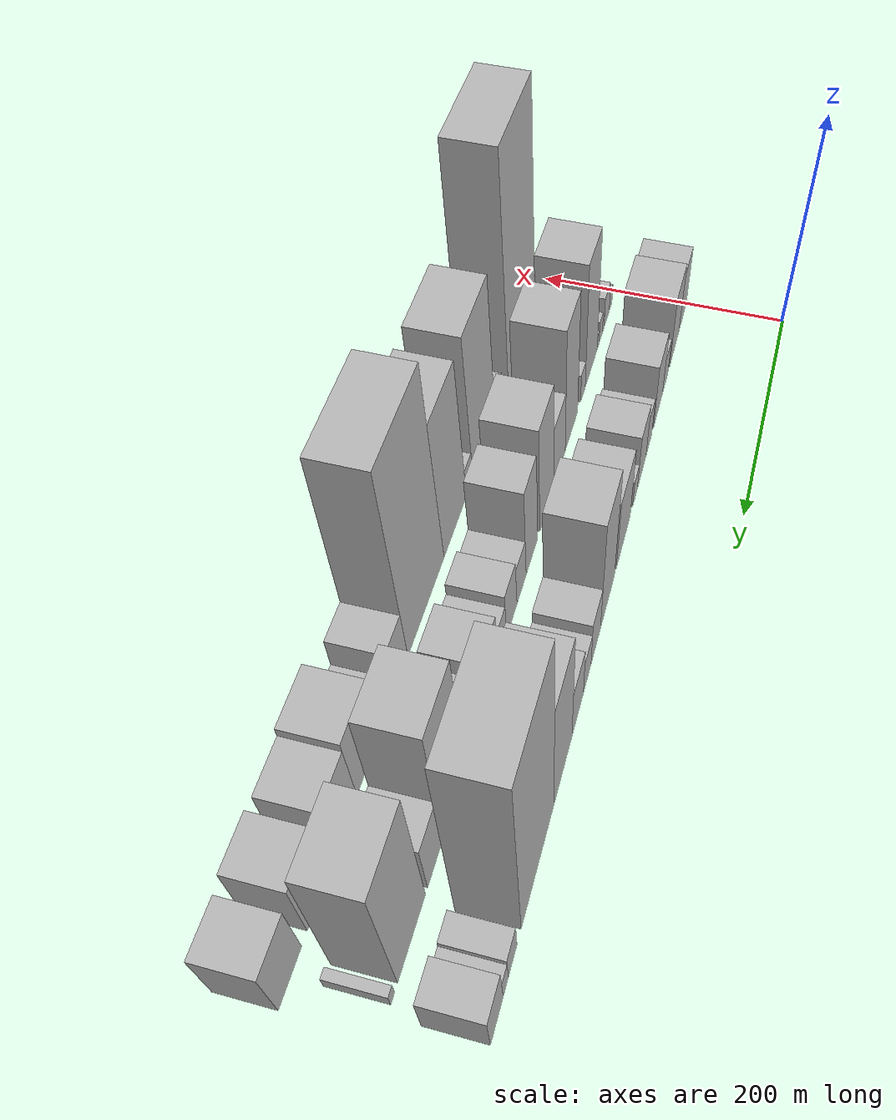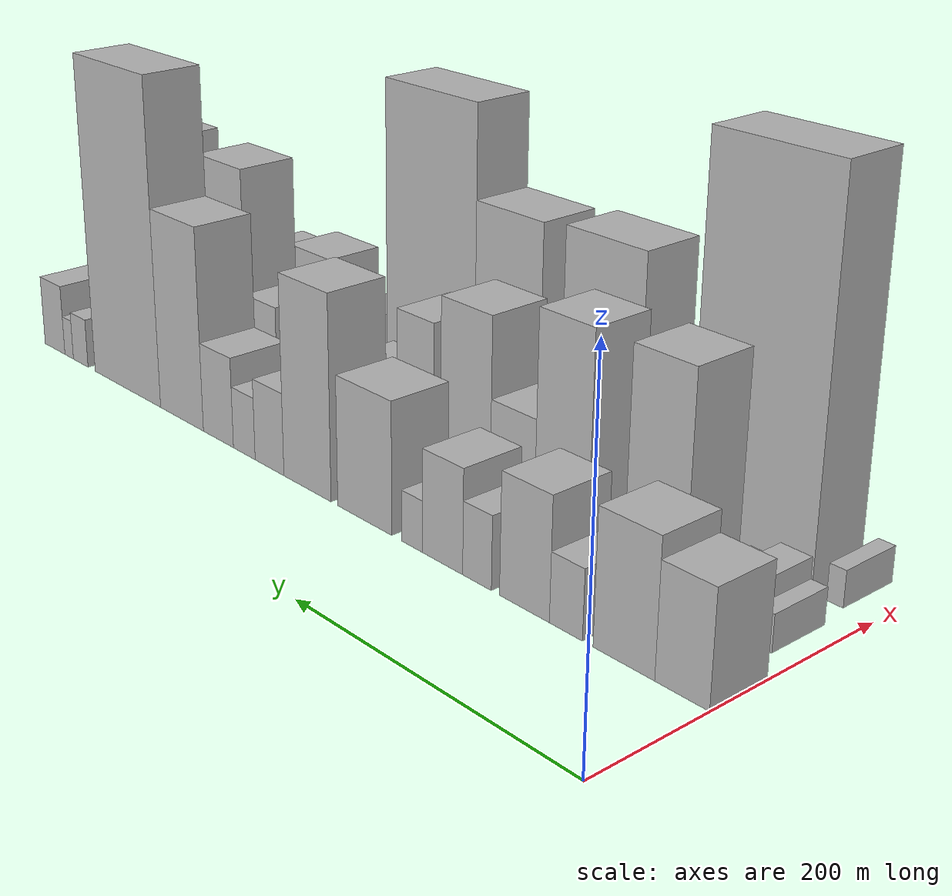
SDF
<sdf version="1.6">
 <world name="default">
  <model name="building_19">
   <static>1</static>
   <pose>100.0000 16.6718 0 0.000000 0.000000 0.000000</pose>
   <link name="link">
    <pose>0 0 31.50 0 0 0</pose>
    <collision name="collision"><geometry><box><size>40.0000 32.9597 63.0000</size></box></geometry></collision>
    <visual name="visual">
     <cast_shadows>0</cast_shadows>
     <geometry><box><size>40.0000 32.9597 63.0000</size></box></geometry>
     <material>
      <script>
       <uri>model://HANNAS_wall/materials/scripts</uri>
       <uri>model://HANNAS_wall/materials/textures</uri>
       <name>vrc/HANNAS_wall</name>
      </script>
     </material>
    </visual>
   </link>
  </model>
  <model name="building_20">
   <static>1</static>
   <pose>100.0000 52.8334 0 0.000000 0.000000 0.000000</pose>
   <link name="link">
    <pose>0 0 37.50 0 0 0</pose>
    <collision name="collision"><geometry><box><size>40.0000 39.3635 75.0000</size></box></geometry></collision>
    <visual name="visual">
     <cast_shadows>0</cast_shadows>
     <geometry><box><size>40.0000 39.3635 75.0000</size></box></geometry>
     <material>
      <script>
       <uri>model://HANNAS_wall/materials/scripts</uri>
       <uri>model://HANNAS_wall/materials/textures</uri>
       <name>vrc/HANNAS_wall</name>
      </script>
     </material>
    </visual>
   </link>
  </model>
  <model name="building_21">
   <static>1</static>
   <pose>100.0000 90.7541 0 0.000000 0.000000 0.000000</pose>
   <link name="link">
    <pose>0 0 19.50 0 0 0</pose>
    <collision name="collision"><geometry><box><size>40.0000 22.4779 39.0000</size></box></geometry></collision>
    <visual name="visual">
     <cast_shadows>0</cast_shadows>
     <geometry><box><size>40.0000 22.4779 39.0000</size></box></geometry>
     <material>
      <script>
       <uri>model://HANNAS_wall/materials/scripts</uri>
       <uri>model://HANNAS_wall/materials/textures</uri>
       <name>vrc/HANNAS_wall</name>
      </script>
     </material>
    </visual>
   </link>
  </model>
  <model name="building_22">
   <static>1</static>
   <pose>100.0000 119.7571 0 0.000000 0.000000 0.000000</pose>
   <link name="link">
    <pose>0 0 34.50 0 0 0</pose>
    <collision name="collision"><geometry><box><size>40.0000 35.5280 69.0000</size></box></geometry></collision>
    <visual name="visual">
     <cast_shadows>0</cast_shadows>
     <geometry><box><size>40.0000 35.5280 69.0000</size></box></geometry>
     <material>
      <script>
       <uri>model://HANNAS_wall/materials/scripts</uri>
       <uri>model://HANNAS_wall/materials/textures</uri>
       <name>vrc/HANNAS_wall</name>
      </script>
     </material>
    </visual>
   </link>
  </model>
  <model name="building_23">
   <static>1</static>
   <pose>100.0000 154.3100 0 0.000000 0.000000 0.000000</pose>
   <link name="link">
    <pose>0 0 21.00 0 0 0</pose>
    <collision name="collision"><geometry><box><size>40.0000 21.5779 42.0000</size></box></geometry></collision>
    <visual name="visual">
     <cast_shadows>0</cast_shadows>
     <geometry><box><size>40.0000 21.5779 42.0000</size></box></geometry>
     <material>
      <script>
       <uri>model://HANNAS_wall/materials/scripts</uri>
       <uri>model://HANNAS_wall/materials/textures</uri>
       <name>vrc/HANNAS_wall</name>
      </script>
     </material>
    </visual>
   </link>
  </model>
  <model name="building_24">
   <static>1</static>
   <pose>100.0000 180.9604 0 0.000000 0.000000 0.000000</pose>
   <link name="link">
    <pose>0 0 30.00 0 0 0</pose>
    <collision name="collision"><geometry><box><size>40.0000 31.7229 60.0000</size></box></geometry></collision>
    <visual name="visual">
     <cast_shadows>0</cast_shadows>
     <geometry><box><size>40.0000 31.7229 60.0000</size></box></geometry>
     <material>
      <script>
       <uri>model://HANNAS_wall/materials/scripts</uri>
       <uri>model://HANNAS_wall/materials/textures</uri>
       <name>vrc/HANNAS_wall</name>
      </script>
     </material>
    </visual>
   </link>
  </model>
  <model name="building_25">
   <static>1</static>
   <pose>100.0000 205.2164 0 0.000000 0.000000 0.000000</pose>
   <link name="link">
    <pose>0 0 15.00 0 0 0</pose>
    <collision name="collision"><geometry><box><size>40.0000 16.7892 30.0000</size></box></geometry></collision>
    <visual name="visual">
     <cast_shadows>0</cast_shadows>
     <geometry><box><size>40.0000 16.7892 30.0000</size></box></geometry>
     <material>
      <script>
       <uri>model://HANNAS_wall/materials/scripts</uri>
       <uri>model://HANNAS_wall/materials/textures</uri>
       <name>vrc/HANNAS_wall</name>
      </script>
     </material>
    </visual>
   </link>
  </model>
  <model name="building_26">
   <static>1</static>
   <pose>100.0000 244.8962 0 0.000000 0.000000 0.000000</pose>
   <link name="link">
    <pose>0 0 39.00 0 0 0</pose>
    <collision name="collision"><geometry><box><size>40.0000 46.5704 78.0000</size></box></geometry></collision>
    <visual name="visual">
     <cast_shadows>0</cast_shadows>
     <geometry><box><size>40.0000 46.5704 78.0000</size></box></geometry>
     <material>
      <script>
       <uri>model://HANNAS_wall/materials/scripts</uri>
       <uri>model://HANNAS_wall/materials/textures</uri>
       <name>vrc/HANNAS_wall</name>
      </script>
     </material>
    </visual>
   </link>
  </model>
  <model name="building_27">
   <static>1</static>
   <pose>100.0000 296.0267 0 0.000000 0.000000 0.000000</pose>
   <link name="link">
    <pose>0 0 61.50 0 0 0</pose>
    <collision name="collision"><geometry><box><size>40.0000 43.6906 123.0000</size></box></geometry></collision>
    <visual name="visual">
     <cast_shadows>0</cast_shadows>
     <geometry><box><size>40.0000 43.6906 123.0000</size></box></geometry>
     <material>
      <script>
       <uri>model://HANNAS_wall/materials/scripts</uri>
       <uri>model://HANNAS_wall/materials/textures</uri>
       <name>vrc/HANNAS_wall</name>
      </script>
     </material>
    </visual>
   </link>
  </model>
  <model name="building_28">
   <static>1</static>
   <pose>100.0000 331.8743 0 0.000000 0.000000 0.000000</pose>
   <link name="link">
    <pose>0 0 25.50 0 0 0</pose>
    <collision name="collision"><geometry><box><size>40.0000 28.0047 51.0000</size></box></geometry></collision>
    <visual name="visual">
     <cast_shadows>0</cast_shadows>
     <geometry><box><size>40.0000 28.0047 51.0000</size></box></geometry>
     <material>
      <script>
       <uri>model://HANNAS_wall/materials/scripts</uri>
       <uri>model://HANNAS_wall/materials/textures</uri>
       <name>vrc/HANNAS_wall</name>
      </script>
     </material>
    </visual>
   </link>
  </model>
  <model name="building_29">
   <static>1</static>
   <pose>100.0000 356.8069 0 0.000000 0.000000 0.000000</pose>
   <link name="link">
    <pose>0 0 19.50 0 0 0</pose>
    <collision name="collision"><geometry><box><size>40.0000 21.8605 39.0000</size></box></geometry></collision>
    <visual name="visual">
     <cast_shadows>0</cast_shadows>
     <geometry><box><size>40.0000 21.8605 39.0000</size></box></geometry>
     <material>
      <script>
       <uri>model://HANNAS_wall/materials/scripts</uri>
       <uri>model://HANNAS_wall/materials/textures</uri>
       <name>vrc/HANNAS_wall</name>
      </script>
     </material>
    </visual>
   </link>
  </model>
  <model name="building_30">
   <static>1</static>
   <pose>100.0000 383.3998 0 0.000000 0.000000 0.000000</pose>
   <link name="link">
    <pose>0 0 28.50 0 0 0</pose>
    <collision name="collision"><geometry><box><size>40.0000 31.3254 57.0000</size></box></geometry></collision>
    <visual name="visual">
     <cast_shadows>0</cast_shadows>
     <geometry><box><size>40.0000 31.3254 57.0000</size></box></geometry>
     <material>
      <script>
       <uri>model://HANNAS_wall/materials/scripts</uri>
       <uri>model://HANNAS_wall/materials/textures</uri>
       <name>vrc/HANNAS_wall</name>
      </script>
     </material>
    </visual>
   </link>
  </model>
  <model name="building_31">
   <static>1</static>
   <pose>100.0000 422.5786 0 0.000000 0.000000 0.000000</pose>
   <link name="link">
    <pose>0 0 64.50 0 0 0</pose>
    <collision name="collision"><geometry><box><size>40.0000 47.0321 129.0000</size></box></geometry></collision>
    <visual name="visual">
     <cast_shadows>0</cast_shadows>
     <geometry><box><size>40.0000 47.0321 129.0000</size></box></geometry>
     <material>
      <script>
       <uri>model://HANNAS_wall/materials/scripts</uri>
       <uri>model://HANNAS_wall/materials/textures</uri>
       <name>vrc/HANNAS_wall</name>
      </script>
     </material>
    </visual>
   </link>
  </model>
  <model name="building_32">
   <static>1</static>
   <pose>100.0000 484.9274 0 0.000000 0.000000 0.000000</pose>
   <link name="link">
    <pose>0 0 105.00 0 0 0</pose>
    <collision name="collision"><geometry><box><size>40.0000 77.6657 210.0000</size></box></geometry></collision>
    <visual name="visual">
     <cast_shadows>0</cast_shadows>
     <geometry><box><size>40.0000 77.6657 210.0000</size></box></geometry>
     <material>
      <script>
       <uri>model://HANNAS_wall/materials/scripts</uri>
       <uri>model://HANNAS_wall/materials/textures</uri>
       <name>vrc/HANNAS_wall</name>
      </script>
     </material>
    </visual>
   </link>
  </model>
  <model name="building_33">
   <static>1</static>
   <pose>100.0000 542.0718 0 0.000000 0.000000 0.000000</pose>
   <link name="link">
    <pose>0 0 16.50 0 0 0</pose>
    <collision name="collision"><geometry><box><size>40.0000 18.6230 33.0000</size></box></geometry></collision>
    <visual name="visual">
     <cast_shadows>0</cast_shadows>
     <geometry><box><size>40.0000 18.6230 33.0000</size></box></geometry>
     <material>
      <script>
       <uri>model://HANNAS_wall/materials/scripts</uri>
       <uri>model://HANNAS_wall/materials/textures</uri>
       <name>vrc/HANNAS_wall</name>
      </script>
     </material>
    </visual>
   </link>
  </model>
  <model name="building_34">
   <static>1</static>
   <pose>100.0000 556.8695 0 0.000000 0.000000 0.000000</pose>
   <link name="link">
    <pose>0 0 13.50 0 0 0</pose>
    <collision name="collision"><geometry><box><size>40.0000 10.9724 27.0000</size></box></geometry></collision>
    <visual name="visual">
     <cast_shadows>0</cast_shadows>
     <geometry><box><size>40.0000 10.9724 27.0000</size></box></geometry>
     <material>
      <script>
       <uri>model://HANNAS_wall/materials/scripts</uri>
       <uri>model://HANNAS_wall/materials/textures</uri>
       <name>vrc/HANNAS_wall</name>
      </script>
     </material>
    </visual>
   </link>
  </model>
  <model name="building_35">
   <static>1</static>
   <pose>100.0000 575.3546 0 0.000000 0.000000 0.000000</pose>
   <link name="link">
    <pose>0 0 24.00 0 0 0</pose>
    <collision name="collision"><geometry><box><size>40.0000 25.9978 48.0000</size></box></geometry></collision>
    <visual name="visual">
     <cast_shadows>0</cast_shadows>
     <geometry><box><size>40.0000 25.9978 48.0000</size></box></geometry>
     <material>
      <script>
       <uri>model://HANNAS_wall/materials/scripts</uri>
       <uri>model://HANNAS_wall/materials/textures</uri>
       <name>vrc/HANNAS_wall</name>
      </script>
     </material>
    </visual>
   </link>
  </model>
  <model name="building_52">
   <static>1</static>
   <pose>160.0000 18.9493 0 0.000000 0.000000 0.000000</pose>
   <link name="link">
    <pose>0 0 10.50 0 0 0</pose>
    <collision name="collision"><geometry><box><size>40.0000 10.3167 21.0000</size></box></geometry></collision>
    <visual name="visual">
     <cast_shadows>0</cast_shadows>
     <geometry><box><size>40.0000 10.3167 21.0000</size></box></geometry>
     <material>
      <script>
       <uri>model://HANNAS_wall/materials/scripts</uri>
       <uri>model://HANNAS_wall/materials/textures</uri>
       <name>vrc/HANNAS_wall</name>
      </script>
     </material>
    </visual>
   </link>
  </model>
  <model name="building_53">
   <static>1</static>
   <pose>160.0000 33.8749 0 0.000000 0.000000 0.000000</pose>
   <link name="link">
    <pose>0 0 16.50 0 0 0</pose>
    <collision name="collision"><geometry><box><size>40.0000 19.5344 33.0000</size></box></geometry></collision>
    <visual name="visual">
     <cast_shadows>0</cast_shadows>
     <geometry><box><size>40.0000 19.5344 33.0000</size></box></geometry>
     <material>
      <script>
       <uri>model://HANNAS_wall/materials/scripts</uri>
       <uri>model://HANNAS_wall/materials/textures</uri>
       <name>vrc/HANNAS_wall</name>
      </script>
     </material>
    </visual>
   </link>
  </model>
  <model name="building_54">
   <static>1</static>
   <pose>160.0000 46.6910 0 0.000000 0.000000 0.000000</pose>
   <link name="link">
    <pose>0 0 7.50 0 0 0</pose>
    <collision name="collision"><geometry><box><size>40.0000 6.0978 15.0000</size></box></geometry></collision>
    <visual name="visual">
     <cast_shadows>0</cast_shadows>
     <geometry><box><size>40.0000 6.0978 15.0000</size></box></geometry>
     <material>
      <script>
       <uri>model://HANNAS_wall/materials/scripts</uri>
       <uri>model://HANNAS_wall/materials/textures</uri>
       <name>vrc/HANNAS_wall</name>
      </script>
     </material>
    </visual>
   </link>
  </model>
  <model name="building_55">
   <static>1</static>
   <pose>160.0000 55.6820 0 0.000000 0.000000 0.000000</pose>
   <link name="link">
    <pose>0 0 12.00 0 0 0</pose>
    <collision name="collision"><geometry><box><size>40.0000 11.8844 24.0000</size></box></geometry></collision>
    <visual name="visual">
     <cast_shadows>0</cast_shadows>
     <geometry><box><size>40.0000 11.8844 24.0000</size></box></geometry>
     <material>
      <script>
       <uri>model://HANNAS_wall/materials/scripts</uri>
       <uri>model://HANNAS_wall/materials/textures</uri>
       <name>vrc/HANNAS_wall</name>
      </script>
     </material>
    </visual>
   </link>
  </model>
  <model name="building_56">
   <static>1</static>
   <pose>160.0000 65.2074 0 0.000000 0.000000 0.000000</pose>
   <link name="link">
    <pose>0 0 7.50 0 0 0</pose>
    <collision name="collision"><geometry><box><size>40.0000 7.1664 15.0000</size></box></geometry></collision>
    <visual name="visual">
     <cast_shadows>0</cast_shadows>
     <geometry><box><size>40.0000 7.1664 15.0000</size></box></geometry>
     <material>
      <script>
       <uri>model://HANNAS_wall/materials/scripts</uri>
       <uri>model://HANNAS_wall/materials/textures</uri>
       <name>vrc/HANNAS_wall</name>
      </script>
     </material>
    </visual>
   </link>
  </model>
  <model name="building_57">
   <static>1</static>
   <pose>160.0000 89.3059 0 0.000000 0.000000 0.000000</pose>
   <link name="link">
    <pose>0 0 64.50 0 0 0</pose>
    <collision name="collision"><geometry><box><size>40.0000 41.0306 129.0000</size></box></geometry></collision>
    <visual name="visual">
     <cast_shadows>0</cast_shadows>
     <geometry><box><size>40.0000 41.0306 129.0000</size></box></geometry>
     <material>
      <script>
       <uri>model://HANNAS_wall/materials/scripts</uri>
       <uri>model://HANNAS_wall/materials/textures</uri>
       <name>vrc/HANNAS_wall</name>
      </script>
     </material>
    </visual>
   </link>
  </model>
  <model name="building_58">
   <static>1</static>
   <pose>160.0000 117.4776 0 0.000000 0.000000 0.000000</pose>
   <link name="link">
    <pose>0 0 15.00 0 0 0</pose>
    <collision name="collision"><geometry><box><size>40.0000 15.3127 30.0000</size></box></geometry></collision>
    <visual name="visual">
     <cast_shadows>0</cast_shadows>
     <geometry><box><size>40.0000 15.3127 30.0000</size></box></geometry>
     <material>
      <script>
       <uri>model://HANNAS_wall/materials/scripts</uri>
       <uri>model://HANNAS_wall/materials/textures</uri>
       <name>vrc/HANNAS_wall</name>
      </script>
     </material>
    </visual>
   </link>
  </model>
  <model name="building_59">
   <static>1</static>
   <pose>160.0000 155.0893 0 0.000000 0.000000 0.000000</pose>
   <link name="link">
    <pose>0 0 64.50 0 0 0</pose>
    <collision name="collision"><geometry><box><size>40.0000 39.9107 129.0000</size></box></geometry></collision>
    <visual name="visual">
     <cast_shadows>0</cast_shadows>
     <geometry><box><size>40.0000 39.9107 129.0000</size></box></geometry>
     <material>
      <script>
       <uri>model://HANNAS_wall/materials/scripts</uri>
       <uri>model://HANNAS_wall/materials/textures</uri>
       <name>vrc/HANNAS_wall</name>
      </script>
     </material>
    </visual>
   </link>
  </model>
  <model name="building_60">
   <static>1</static>
   <pose>160.0000 192.4523 0 0.000000 0.000000 0.000000</pose>
   <link name="link">
    <pose>0 0 33.00 0 0 0</pose>
    <collision name="collision"><geometry><box><size>40.0000 34.8153 66.0000</size></box></geometry></collision>
    <visual name="visual">
     <cast_shadows>0</cast_shadows>
     <geometry><box><size>40.0000 34.8153 66.0000</size></box></geometry>
     <material>
      <script>
       <uri>model://HANNAS_wall/materials/scripts</uri>
       <uri>model://HANNAS_wall/materials/textures</uri>
       <name>vrc/HANNAS_wall</name>
      </script>
     </material>
    </visual>
   </link>
  </model>
  <model name="building_61">
   <static>1</static>
   <pose>160.0000 230.3345 0 0.000000 0.000000 0.000000</pose>
   <link name="link">
    <pose>0 0 57.00 0 0 0</pose>
    <collision name="collision"><geometry><box><size>40.0000 40.9492 114.0000</size></box></geometry></collision>
    <visual name="visual">
     <cast_shadows>0</cast_shadows>
     <geometry><box><size>40.0000 40.9492 114.0000</size></box></geometry>
     <material>
      <script>
       <uri>model://HANNAS_wall/materials/scripts</uri>
       <uri>model://HANNAS_wall/materials/textures</uri>
       <name>vrc/HANNAS_wall</name>
      </script>
     </material>
    </visual>
   </link>
  </model>
  <model name="building_62">
   <static>1</static>
   <pose>160.0000 272.7439 0 0.000000 0.000000 0.000000</pose>
   <link name="link">
    <pose>0 0 48.00 0 0 0</pose>
    <collision name="collision"><geometry><box><size>40.0000 31.8695 96.0000</size></box></geometry></collision>
    <visual name="visual">
     <cast_shadows>0</cast_shadows>
     <geometry><box><size>40.0000 31.8695 96.0000</size></box></geometry>
     <material>
      <script>
       <uri>model://HANNAS_wall/materials/scripts</uri>
       <uri>model://HANNAS_wall/materials/textures</uri>
       <name>vrc/HANNAS_wall</name>
      </script>
     </material>
    </visual>
   </link>
  </model>
  <model name="building_63">
   <static>1</static>
   <pose>160.0000 300.8658 0 0.000000 0.000000 0.000000</pose>
   <link name="link">
    <pose>0 0 21.00 0 0 0</pose>
    <collision name="collision"><geometry><box><size>40.0000 24.3745 42.0000</size></box></geometry></collision>
    <visual name="visual">
     <cast_shadows>0</cast_shadows>
     <geometry><box><size>40.0000 24.3745 42.0000</size></box></geometry>
     <material>
      <script>
       <uri>model://HANNAS_wall/materials/scripts</uri>
       <uri>model://HANNAS_wall/materials/textures</uri>
       <name>vrc/HANNAS_wall</name>
      </script>
     </material>
    </visual>
   </link>
  </model>
  <model name="building_64">
   <static>1</static>
   <pose>160.0000 326.2334 0 0.000000 0.000000 0.000000</pose>
   <link name="link">
    <pose>0 0 25.50 0 0 0</pose>
    <collision name="collision"><geometry><box><size>40.0000 26.3607 51.0000</size></box></geometry></collision>
    <visual name="visual">
     <cast_shadows>0</cast_shadows>
     <geometry><box><size>40.0000 26.3607 51.0000</size></box></geometry>
     <material>
      <script>
       <uri>model://HANNAS_wall/materials/scripts</uri>
       <uri>model://HANNAS_wall/materials/textures</uri>
       <name>vrc/HANNAS_wall</name>
      </script>
     </material>
    </visual>
   </link>
  </model>
  <model name="building_65">
   <static>1</static>
   <pose>160.0000 349.4752 0 0.000000 0.000000 0.000000</pose>
   <link name="link">
    <pose>0 0 19.50 0 0 0</pose>
    <collision name="collision"><geometry><box><size>40.0000 20.1228 39.0000</size></box></geometry></collision>
    <visual name="visual">
     <cast_shadows>0</cast_shadows>
     <geometry><box><size>40.0000 20.1228 39.0000</size></box></geometry>
     <material>
      <script>
       <uri>model://HANNAS_wall/materials/scripts</uri>
       <uri>model://HANNAS_wall/materials/textures</uri>
       <name>vrc/HANNAS_wall</name>
      </script>
     </material>
    </visual>
   </link>
  </model>
  <model name="building_66">
   <static>1</static>
   <pose>160.0000 377.3223 0 0.000000 0.000000 0.000000</pose>
   <link name="link">
    <pose>0 0 30.00 0 0 0</pose>
    <collision name="collision"><geometry><box><size>40.0000 35.5715 60.0000</size></box></geometry></collision>
    <visual name="visual">
     <cast_shadows>0</cast_shadows>
     <geometry><box><size>40.0000 35.5715 60.0000</size></box></geometry>
     <material>
      <script>
       <uri>model://HANNAS_wall/materials/scripts</uri>
       <uri>model://HANNAS_wall/materials/textures</uri>
       <name>vrc/HANNAS_wall</name>
      </script>
     </material>
    </visual>
   </link>
  </model>
  <model name="building_67">
   <static>1</static>
   <pose>160.0000 421.0979 0 0.000000 0.000000 0.000000</pose>
   <link name="link">
    <pose>0 0 31.50 0 0 0</pose>
    <collision name="collision"><geometry><box><size>40.0000 31.9797 63.0000</size></box></geometry></collision>
    <visual name="visual">
     <cast_shadows>0</cast_shadows>
     <geometry><box><size>40.0000 31.9797 63.0000</size></box></geometry>
     <material>
      <script>
       <uri>model://HANNAS_wall/materials/scripts</uri>
       <uri>model://HANNAS_wall/materials/textures</uri>
       <name>vrc/HANNAS_wall</name>
      </script>
     </material>
    </visual>
   </link>
  </model>
  <model name="building_68">
   <static>1</static>
   <pose>160.0000 460.6105 0 0.000000 0.000000 0.000000</pose>
   <link name="link">
    <pose>0 0 72.00 0 0 0</pose>
    <collision name="collision"><geometry><box><size>40.0000 47.0456 144.0000</size></box></geometry></collision>
    <visual name="visual">
     <cast_shadows>0</cast_shadows>
     <geometry><box><size>40.0000 47.0456 144.0000</size></box></geometry>
     <material>
      <script>
       <uri>model://HANNAS_wall/materials/scripts</uri>
       <uri>model://HANNAS_wall/materials/textures</uri>
       <name>vrc/HANNAS_wall</name>
      </script>
     </material>
    </visual>
   </link>
  </model>
  <model name="building_69">
   <static>1</static>
   <pose>160.0000 499.2296 0 0.000000 0.000000 0.000000</pose>
   <link name="link">
    <pose>0 0 30.00 0 0 0</pose>
    <collision name="collision"><geometry><box><size>40.0000 30.1926 60.0000</size></box></geometry></collision>
    <visual name="visual">
     <cast_shadows>0</cast_shadows>
     <geometry><box><size>40.0000 30.1926 60.0000</size></box></geometry>
     <material>
      <script>
       <uri>model://HANNAS_wall/materials/scripts</uri>
       <uri>model://HANNAS_wall/materials/textures</uri>
       <name>vrc/HANNAS_wall</name>
      </script>
     </material>
    </visual>
   </link>
  </model>
  <model name="building_70">
   <static>1</static>
   <pose>160.0000 544.1482 0 0.000000 0.000000 0.000000</pose>
   <link name="link">
    <pose>0 0 73.50 0 0 0</pose>
    <collision name="collision"><geometry><box><size>40.0000 51.6446 147.0000</size></box></geometry></collision>
    <visual name="visual">
     <cast_shadows>0</cast_shadows>
     <geometry><box><size>40.0000 51.6446 147.0000</size></box></geometry>
     <material>
      <script>
       <uri>model://HANNAS_wall/materials/scripts</uri>
       <uri>model://HANNAS_wall/materials/textures</uri>
       <name>vrc/HANNAS_wall</name>
      </script>
     </material>
    </visual>
   </link>
  </model>
  <model name="building_71">
   <static>1</static>
   <pose>160.0000 578.4765 0 0.000000 0.000000 0.000000</pose>
   <link name="link">
    <pose>0 0 7.50 0 0 0</pose>
    <collision name="collision"><geometry><box><size>40.0000 7.0121 15.0000</size></box></geometry></collision>
    <visual name="visual">
     <cast_shadows>0</cast_shadows>
     <geometry><box><size>40.0000 7.0121 15.0000</size></box></geometry>
     <material>
      <script>
       <uri>model://HANNAS_wall/materials/scripts</uri>
       <uri>model://HANNAS_wall/materials/textures</uri>
       <name>vrc/HANNAS_wall</name>
      </script>
     </material>
    </visual>
   </link>
  </model>
  <model name="building_89">
   <static>1</static>
   <pose>220.0000 23.0504 0 0.000000 0.000000 0.000000</pose>
   <link name="link">
    <pose>0 0 10.50 0 0 0</pose>
    <collision name="collision"><geometry><box><size>40.0000 10.2916 21.0000</size></box></geometry></collision>
    <visual name="visual">
     <cast_shadows>0</cast_shadows>
     <geometry><box><size>40.0000 10.2916 21.0000</size></box></geometry>
     <material>
      <script>
       <uri>model://HANNAS_wall/materials/scripts</uri>
       <uri>model://HANNAS_wall/materials/textures</uri>
       <name>vrc/HANNAS_wall</name>
      </script>
     </material>
    </visual>
   </link>
  </model>
  <model name="building_90">
   <static>1</static>
   <pose>220.0000 78.5140 0 0.000000 0.000000 0.000000</pose>
   <link name="link">
    <pose>0 0 112.50 0 0 0</pose>
    <collision name="collision"><geometry><box><size>40.0000 82.6355 225.0000</size></box></geometry></collision>
    <visual name="visual">
     <cast_shadows>0</cast_shadows>
     <geometry><box><size>40.0000 82.6355 225.0000</size></box></geometry>
     <material>
      <script>
       <uri>model://HANNAS_wall/materials/scripts</uri>
       <uri>model://HANNAS_wall/materials/textures</uri>
       <name>vrc/HANNAS_wall</name>
      </script>
     </material>
    </visual>
   </link>
  </model>
  <model name="building_91">
   <static>1</static>
   <pose>220.0000 132.3262 0 0.000000 0.000000 0.000000</pose>
   <link name="link">
    <pose>0 0 9.00 0 0 0</pose>
    <collision name="collision"><geometry><box><size>40.0000 8.9889 18.0000</size></box></geometry></collision>
    <visual name="visual">
     <cast_shadows>0</cast_shadows>
     <geometry><box><size>40.0000 8.9889 18.0000</size></box></geometry>
     <material>
      <script>
       <uri>model://HANNAS_wall/materials/scripts</uri>
       <uri>model://HANNAS_wall/materials/textures</uri>
       <name>vrc/HANNAS_wall</name>
      </script>
     </material>
    </visual>
   </link>
  </model>
  <model name="building_92">
   <static>1</static>
   <pose>220.0000 144.4664 0 0.000000 0.000000 0.000000</pose>
   <link name="link">
    <pose>0 0 15.00 0 0 0</pose>
    <collision name="collision"><geometry><box><size>40.0000 15.2916 30.0000</size></box></geometry></collision>
    <visual name="visual">
     <cast_shadows>0</cast_shadows>
     <geometry><box><size>40.0000 15.2916 30.0000</size></box></geometry>
     <material>
      <script>
       <uri>model://HANNAS_wall/materials/scripts</uri>
       <uri>model://HANNAS_wall/materials/textures</uri>
       <name>vrc/HANNAS_wall</name>
      </script>
     </material>
    </visual>
   </link>
  </model>
  <model name="building_93">
   <static>1</static>
   <pose>220.0000 186.9738 0 0.000000 0.000000 0.000000</pose>
   <link name="link">
    <pose>0 0 75.00 0 0 0</pose>
    <collision name="collision"><geometry><box><size>40.0000 59.7232 150.0000</size></box></geometry></collision>
    <visual name="visual">
     <cast_shadows>0</cast_shadows>
     <geometry><box><size>40.0000 59.7232 150.0000</size></box></geometry>
     <material>
      <script>
       <uri>model://HANNAS_wall/materials/scripts</uri>
       <uri>model://HANNAS_wall/materials/textures</uri>
       <name>vrc/HANNAS_wall</name>
      </script>
     </material>
    </visual>
   </link>
  </model>
  <model name="building_94">
   <static>1</static>
   <pose>220.0000 225.4222 0 0.000000 0.000000 0.000000</pose>
   <link name="link">
    <pose>0 0 15.00 0 0 0</pose>
    <collision name="collision"><geometry><box><size>40.0000 17.1735 30.0000</size></box></geometry></collision>
    <visual name="visual">
     <cast_shadows>0</cast_shadows>
     <geometry><box><size>40.0000 17.1735 30.0000</size></box></geometry>
     <material>
      <script>
       <uri>model://HANNAS_wall/materials/scripts</uri>
       <uri>model://HANNAS_wall/materials/textures</uri>
       <name>vrc/HANNAS_wall</name>
      </script>
     </material>
    </visual>
   </link>
  </model>
  <model name="building_95">
   <static>1</static>
   <pose>220.0000 261.4805 0 0.000000 0.000000 0.000000</pose>
   <link name="link">
    <pose>0 0 73.50 0 0 0</pose>
    <collision name="collision"><geometry><box><size>40.0000 54.9432 147.0000</size></box></geometry></collision>
    <visual name="visual">
     <cast_shadows>0</cast_shadows>
     <geometry><box><size>40.0000 54.9432 147.0000</size></box></geometry>
     <material>
      <script>
       <uri>model://HANNAS_wall/materials/scripts</uri>
       <uri>model://HANNAS_wall/materials/textures</uri>
       <name>vrc/HANNAS_wall</name>
      </script>
     </material>
    </visual>
   </link>
  </model>
  <model name="building_96">
   <static>1</static>
   <pose>220.0000 329.4596 0 0.000000 0.000000 0.000000</pose>
   <link name="link">
    <pose>0 0 102.00 0 0 0</pose>
    <collision name="collision"><geometry><box><size>40.0000 81.0150 204.0000</size></box></geometry></collision>
    <visual name="visual">
     <cast_shadows>0</cast_shadows>
     <geometry><box><size>40.0000 81.0150 204.0000</size></box></geometry>
     <material>
      <script>
       <uri>model://HANNAS_wall/materials/scripts</uri>
       <uri>model://HANNAS_wall/materials/textures</uri>
       <name>vrc/HANNAS_wall</name>
      </script>
     </material>
    </visual>
   </link>
  </model>
  <model name="building_97">
   <static>1</static>
   <pose>220.0000 384.8513 0 0.000000 0.000000 0.000000</pose>
   <link name="link">
    <pose>0 0 27.00 0 0 0</pose>
    <collision name="collision"><geometry><box><size>40.0000 29.7685 54.0000</size></box></geometry></collision>
    <visual name="visual">
     <cast_shadows>0</cast_shadows>
     <geometry><box><size>40.0000 29.7685 54.0000</size></box></geometry>
     <material>
      <script>
       <uri>model://HANNAS_wall/materials/scripts</uri>
       <uri>model://HANNAS_wall/materials/textures</uri>
       <name>vrc/HANNAS_wall</name>
      </script>
     </material>
    </visual>
   </link>
  </model>
  <model name="building_98">
   <static>1</static>
   <pose>220.0000 405.1279 0 0.000000 0.000000 0.000000</pose>
   <link name="link">
    <pose>0 0 12.00 0 0 0</pose>
    <collision name="collision"><geometry><box><size>40.0000 10.7847 24.0000</size></box></geometry></collision>
    <visual name="visual">
     <cast_shadows>0</cast_shadows>
     <geometry><box><size>40.0000 10.7847 24.0000</size></box></geometry>
     <material>
      <script>
       <uri>model://HANNAS_wall/materials/scripts</uri>
       <uri>model://HANNAS_wall/materials/textures</uri>
       <name>vrc/HANNAS_wall</name>
      </script>
     </material>
    </visual>
   </link>
  </model>
  <model name="building_99">
   <static>1</static>
   <pose>220.0000 418.8555 0 0.000000 0.000000 0.000000</pose>
   <link name="link">
    <pose>0 0 15.00 0 0 0</pose>
    <collision name="collision"><geometry><box><size>40.0000 16.6705 30.0000</size></box></geometry></collision>
    <visual name="visual">
     <cast_shadows>0</cast_shadows>
     <geometry><box><size>40.0000 16.6705 30.0000</size></box></geometry>
     <material>
      <script>
       <uri>model://HANNAS_wall/materials/scripts</uri>
       <uri>model://HANNAS_wall/materials/textures</uri>
       <name>vrc/HANNAS_wall</name>
      </script>
     </material>
    </visual>
   </link>
  </model>
  <model name="building_100">
   <static>1</static>
   <pose>220.0000 448.8634 0 0.000000 0.000000 0.000000</pose>
   <link name="link">
    <pose>0 0 37.50 0 0 0</pose>
    <collision name="collision"><geometry><box><size>40.0000 43.3452 75.0000</size></box></geometry></collision>
    <visual name="visual">
     <cast_shadows>0</cast_shadows>
     <geometry><box><size>40.0000 43.3452 75.0000</size></box></geometry>
     <material>
      <script>
       <uri>model://HANNAS_wall/materials/scripts</uri>
       <uri>model://HANNAS_wall/materials/textures</uri>
       <name>vrc/HANNAS_wall</name>
      </script>
     </material>
    </visual>
   </link>
  </model>
  <model name="building_101">
   <static>1</static>
   <pose>220.0000 489.7748 0 0.000000 0.000000 0.000000</pose>
   <link name="link">
    <pose>0 0 33.00 0 0 0</pose>
    <collision name="collision"><geometry><box><size>40.0000 38.4775 66.0000</size></box></geometry></collision>
    <visual name="visual">
     <cast_shadows>0</cast_shadows>
     <geometry><box><size>40.0000 38.4775 66.0000</size></box></geometry>
     <material>
      <script>
       <uri>model://HANNAS_wall/materials/scripts</uri>
       <uri>model://HANNAS_wall/materials/textures</uri>
       <name>vrc/HANNAS_wall</name>
      </script>
     </material>
    </visual>
   </link>
  </model>
  <model name="building_102">
   <static>1</static>
   <pose>220.0000 536.7291 0 0.000000 0.000000 0.000000</pose>
   <link name="link">
    <pose>0 0 34.50 0 0 0</pose>
    <collision name="collision"><geometry><box><size>40.0000 37.4312 69.0000</size></box></geometry></collision>
    <visual name="visual">
     <cast_shadows>0</cast_shadows>
     <geometry><box><size>40.0000 37.4312 69.0000</size></box></geometry>
     <material>
      <script>
       <uri>model://HANNAS_wall/materials/scripts</uri>
       <uri>model://HANNAS_wall/materials/textures</uri>
       <name>vrc/HANNAS_wall</name>
      </script>
     </material>
    </visual>
   </link>
  </model>
  <model name="building_103">
   <static>1</static>
   <pose>220.0000 582.4773 0 0.000000 0.000000 0.000000</pose>
   <link name="link">
    <pose>0 0 31.50 0 0 0</pose>
    <collision name="collision"><geometry><box><size>40.0000 36.0653 63.0000</size></box></geometry></collision>
    <visual name="visual">
     <cast_shadows>0</cast_shadows>
     <geometry><box><size>40.0000 36.0653 63.0000</size></box></geometry>
     <material>
      <script>
       <uri>model://HANNAS_wall/materials/scripts</uri>
       <uri>model://HANNAS_wall/materials/textures</uri>
       <name>vrc/HANNAS_wall</name>
      </script>
     </material>
    </visual>
   </link>
  </model>
 </world>
</sdf>
